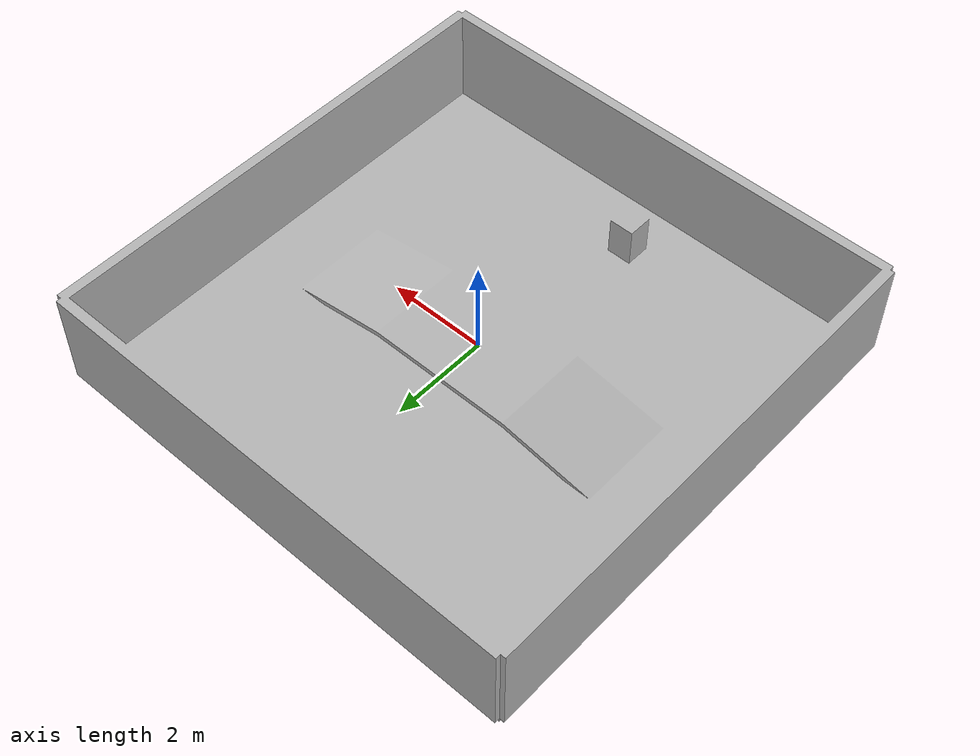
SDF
<?xml version="1.0" ?>
<sdf version="1.6">
<model name="uneven_terrain">
  <static>true</static>
  <link name="link">
    <collision name="collision">
      <geometry>
        <mesh>
          <scale>1 1 1</scale>
          <uri>meshes/uneven_terrain.dae</uri>
        </mesh>
      </geometry>
    </collision>
    <visual name="visual">
      <geometry>
        <mesh>
          <scale>1 1 1</scale>
          <uri>meshes/uneven_terrain.dae</uri>
        </mesh>
      </geometry>
    </visual>
  </link>
</model>
</sdf>
